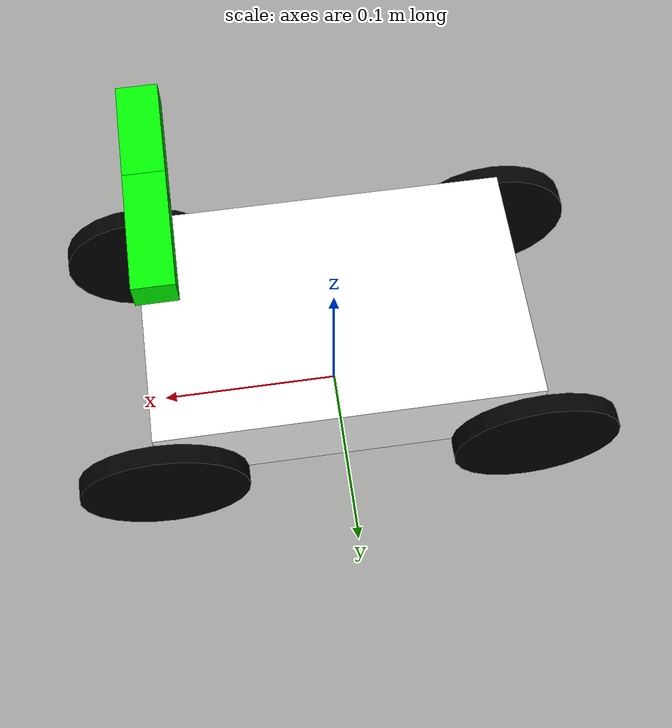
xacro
<?xml version="1.0"?>
<robot xmlns:xacro="http://www.ros.org/wiki/xacro" name="robot">

    <xacro:include filename="gazebo.xacro"/>
    <xacro:include filename="imu.xacro"/>
    <xacro:include filename="transmission.xacro"/>
    <xacro:include filename="left_camera.xacro"/>
    <xacro:include filename="right_camera.xacro"/>

    <!-- Vehicle Geometries -->
    <xacro:property name="base_x_size" value="0.2" />
    <xacro:property name="base_y_size" value="0.13" />
    <xacro:property name="base_z_size" value="0.1" />
    <xacro:property name="wheelbase" value="0.2"/>
    <xacro:property name="track" value="0.14"/>
    <xacro:property name="base_mass" value="3.0"/>
    <xacro:property name="wheel_length" value="0.01" />
    <xacro:property name="wheel_radius" value="0.045" />

    <!-- BASE LINK -->

    <link name="base_footprint">

    </link>

    <!-- base_link LINK -->

    <joint name="base_joint" type="fixed">
        <parent link="base_footprint"/>
        <child link="base_link"/>
        <origin xyz="0 0 0.045"/>
    </joint>

    <link name="base_link">
        <xacro:inertial_box mass="3" x="${base_x_size}" y="${base_y_size}" z="${base_z_size}">
            <origin xyz="0 0 0.025" rpy="0 0 0"/>
        </xacro:inertial_box>
        <visual>
            <origin xyz="0 0 0.025" rpy="0 0 0" />
            <geometry>
                <box size="0.2 0.13 0.05"/>
            </geometry>
            <material name="White">
                <color rgba="1 1 1 1"/>
            </material>
        </visual>
        <collision>
            <origin xyz="0 0 0.025" rpy="0 0 0" />
            <geometry>
                <box size="${base_x_size} ${base_y_size} ${base_z_size}"/>
            </geometry>
        </collision>
    </link>

    <!-- WHEEL LINK -->

    <link name="rear_right_wheel_link">
        <xacro:inertial_cylinder mass="0.1" length="${wheel_length}" radius="${wheel_radius}">
            <origin xyz="0 0 0" rpy="0 0 0"/>
        </xacro:inertial_cylinder>
        <visual>
            <origin xyz="0 0 0" rpy="0 0 0" />
            <geometry>
                <cylinder radius="${wheel_radius}" length="${wheel_length}1"/>
            </geometry>
            <material name="Black">
                <color rgba="0 0 0 1"/>
            </material>
        </visual>
        <collision>
            <origin xyz="0 0 0" rpy="0 0 0" />
            <geometry>
                <cylinder radius="${wheel_radius}" length="${wheel_length}"/>
            </geometry>
        </collision>
    </link>

    <link name="rear_left_wheel_link">
        <xacro:inertial_cylinder mass="0.1" length="${wheel_length}" radius="${wheel_radius}">
            <origin xyz="0 0 0" rpy="0 0 0"/>
        </xacro:inertial_cylinder>
        <visual>
            <origin xyz="0 0 0" rpy="0 0 0" />
            <geometry>
                <cylinder radius="${wheel_radius}" length="${wheel_length}"/>
            </geometry>
            <material name="Black">
                <color rgba="0 0 0 1"/>
            </material>
        </visual>
        <collision>
            <origin xyz="0 0 0" rpy="0 0 0" />
            <geometry>
                <cylinder radius="${wheel_radius}" length="${wheel_length}"/>
            </geometry>
        </collision>
    </link>

    <link name="front_right_wheel_link">
        <xacro:inertial_cylinder mass="0.1" length="${wheel_length}" radius="${wheel_radius}">
            <origin xyz="0 0 0" rpy="0 0 0"/>
        </xacro:inertial_cylinder>
        <visual>
            <origin xyz="0 0 0" rpy="0 0 0" />
            <geometry>
                <cylinder radius="${wheel_radius}" length="${wheel_length}"/>
            </geometry>
            <material name="Black">
                <color rgba="0 0 0 1"/>
            </material>
        </visual>
        <collision>
            <origin xyz="0 0 0" rpy="0 0 0" />
            <geometry>
                <cylinder radius="${wheel_radius}" length="${wheel_length}"/>
            </geometry>
        </collision>
    </link>

    <link name="front_left_wheel_link">
        <xacro:inertial_cylinder mass="0.1" length="${wheel_length}" radius="${wheel_radius}">
            <origin xyz="0 0 0" rpy="0 0 0"/>
        </xacro:inertial_cylinder>
        <visual>
            <origin xyz="0 0 0" rpy="0 0 0" />
            <geometry>
                <cylinder radius="${wheel_radius}" length="${wheel_length}"/>
            </geometry>
            <material name="Black">
                <color rgba="0 0 0 1"/>
            </material>
        </visual>
        <collision>
            <origin xyz="0 0 0" rpy="0 0 0" />
            <geometry>
                <cylinder radius="${wheel_radius}" length="${wheel_length}"/>
            </geometry>
        </collision>
    </link>

    <link name="right_steering_hinge">
        <xacro:inertial_flip_cylinder mass="0.1" length="${wheel_length}" radius="${wheel_radius}">
            <origin xyz="0 0 0" rpy="0 0 0"/>
        </xacro:inertial_flip_cylinder>
    </link>
    <link name="left_steering_hinge">
        <xacro:inertial_flip_cylinder mass="0.1" length="${wheel_length}" radius="${wheel_radius}">
            <origin xyz="0 0 0" rpy="0 0 0"/>
        </xacro:inertial_flip_cylinder>
    </link>

    <!-- WHEEL JOINT -->

    <joint name="rear_left_wheel" type="continuous">
        <origin xyz="${-wheelbase/2} ${track/2} 0" rpy="-1.57079632679 0 0" />
        <parent link="base_link" />
        <child link="rear_left_wheel_link" />
        <axis xyz="0 0 1" />
        <limit
            effort="10.0"
            lower="-3.14159265359"
            upper="3.14159265359"
            velocity="20.0"
            />
    </joint>

    <joint name="rear_right_wheel" type="continuous">
        <origin xyz="${-wheelbase/2} ${-track/2} 0" rpy="-1.57079632679 0 0" />
        <parent link="base_link" />
        <child link="rear_right_wheel_link" />
        <axis xyz="0 0 1" />
        <limit
            effort="10.0"
            lower="-3.14159265359"
            upper="3.14159265359"
            velocity="20.0"
            />
    </joint>

    <joint name="left_steering_hinge_wheel" type="revolute">
        <origin xyz="${wheelbase/2} ${track/2} 0" rpy="0 0 0" />
        <parent link="base_link" />
        <child link="left_steering_hinge" />
        <axis xyz="0 0 1" />
        <limit
            effort="10.00"
            lower="-0.60"
            upper="0.60"
            velocity="10.00"/>
    </joint>

    <joint name="front_left_wheel" type="continuous">
        <origin xyz="0 0 0" rpy="-1.57079632679 0 0" />
        <parent link="left_steering_hinge" />
        <child link="front_left_wheel_link" />
        <axis xyz="0 0 1" />
        <limit
            effort="10.0"
            lower="-3.14159265359"
            upper="3.14159265359"
            velocity="20.0"
            />
    </joint>

    <joint name="right_steering_hinge_wheel" type="revolute">
        <origin xyz="${wheelbase/2} ${-track/2} 0" rpy="0 0 0" />
        <parent link="base_link" />
        <child link="right_steering_hinge" />
        <axis xyz="0 0 1" />
        <limit
            effort="10.00"
            lower="-0.60"
            upper="0.60"
            velocity="10.00"/>
    </joint>

    <joint name="front_right_wheel" type="continuous">
        <origin xyz="0 0 0" rpy="-1.57079632679 0 0" />
        <parent link="right_steering_hinge" />
        <child link="front_right_wheel_link" />
        <axis xyz="0 0 1" />
        <limit
            effort="10.0"
            lower="-3.14159265359"
            upper="3.14159265359"
            velocity="20.0"
            />
    </joint>

    <!-- TRANSMISSIONS -->
    <xacro:wheel_transmission wheel_prefix="left_front"/>
    <xacro:wheel_transmission wheel_prefix="right_front"/>
    <xacro:wheel_transmission wheel_prefix="left_rear"/>
    <xacro:wheel_transmission wheel_prefix="right_rear"/>
    <xacro:steering_hinge_transmission wheel_prefix="left"/>
    <xacro:steering_hinge_transmission wheel_prefix="right"/>

</robot>

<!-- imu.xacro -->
<robot xmlns:xacro="http://www.ros.org/wiki/xacro" >

    <joint name="imu_joint" type="fixed">
        <parent link="base_link"/>
        <child link="imu_link"/>
        <origin xyz="0 0 0" rpy="0 0 0"/>
    </joint>

    <link name="imu_link">
        <visual>
            <geometry>
                <cylinder radius="0.02" length="0.01"/>
            </geometry>
            <material name="Yellow">
                <color rgba="1 1 0 1"/>
            </material>
        </visual>
        <collision>
            <geometry>
                <cylinder radius="0.02" length="0.01"/>
            </geometry>
        </collision>
        <xacro:inertial_cylinder mass="0.1" length="0.01" radius="0.02">
            <origin xyz="0 0 0" rpy="0 0 0"/>
        </xacro:inertial_cylinder>
    </link>

    <gazebo reference="imu_link">
        <gravity>true</gravity>
        <material>Gazebo/Yellow</material>
        <sensor name="imu_sensor" type="imu">
            <always_on>true</always_on>
            <update_rate>100</update_rate>
            <visualize>true</visualize>
            <topic>__default_topic__</topic>
            <plugin filename="libgazebo_ros_imu_sensor.so" name="imu_plugin">
                <ros >
                    <remapping>/imu_plugin/out:=imu</remapping>
                </ros>
                <topicName>imu</topicName>
                <bodyName>imu_link</bodyName>
                <updateRateHZ>100.0</updateRateHZ>
                <gaussianNoise>0.005</gaussianNoise>
                <xyzOffset>0 0 0</xyzOffset>
                <rpyOffset>0 0 0</rpyOffset>
                <frame_name>imu_link</frame_name>
                <initialOrientationAsReference>false</initialOrientationAsReference>
            </plugin>
            <pose>0 0 0 0 0 0</pose>
        </sensor>
    </gazebo>
</robot>

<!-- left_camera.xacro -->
<robot xmlns:xacro="http://www.ros.org/wiki/xacro" >
    <link name='left_camera_link'>
        <pose>0 0 0 0 0 0</pose>
        <inertial>
            <mass value="0.1"/>
            <origin xyz="0.0 0 0" rpy="0 0 0"/>
            <inertia
                ixx="1e-6" ixy="0" ixz="0"
                iyy="1e-6" iyz="0"
                izz="1e-6"
            />
        </inertial>
        <visual name='left_camera_visual'>
            <origin xyz="0 0 0" rpy="0 0 0"/>
            <geometry>
                <box size="0.02 0.06 0.015"/>
            </geometry>
            <material name='left_camera_material'>
                <color rgba="0 1 0 1"/> <!-- Green -->
                <ambient>0.1 0.1 0.1 1</ambient>
                <diffuse>0.1 0.1 0.2 1</diffuse>
                <specular>0 0 0 0</specular>
                <emissive>0 0 0 1</emissive>
            </material>
        </visual>
        <collision name='left_camera_collision'>
            <origin xyz="0 0 0" rpy="0 0 0"/>
            <geometry>
                <box size="0.02 0.06 0.015"/>
            </geometry>
        </collision>
    </link>

    <joint type="fixed" name="left_camera_joint">
        <origin xyz="0.084 0 ${0.03+0.105}" rpy="0 0 0"/>
        <child link="left_camera_link"/>
        <parent link="base_link"/>
    </joint>
    <link name="left_link"></link>

    <joint name="left_camera_to_camera_joint" type="fixed">
        <origin xyz="0 0 0" rpy="${-pi/2} 0 ${-pi/2} "/>
        <parent link="left_camera_link"/>
        <child link="left_link"/>
        </joint>

    <gazebo reference="left_camera_link">
        <material>Gazebo/Green</material>

        <sensor name="camera" type="camera">
            <pose> 0 0 0 0 0 0 </pose>
            <visualize>true</visualize>
            <update_rate>100</update_rate>
            <camera>
                <horizontal_fov>1.089</horizontal_fov>
                <image>
                    <format>L8</format>
                    <width>1384</width>
                    <height>1032</height>
                </image>
                <clip>
                    <near>0.02</near>
                    <far>300</far>
                </clip>
            </camera>
            <plugin name="left_camera_controller" filename="libgazebo_ros_camera.so">
                <ros>
                    <namespace>camera</namespace>
                    <remapping>left_camera_link/image_raw:=left_image</remapping>
                    <remapping>left_camera_link/camera_info:=left_info</remapping>
                </ros>
                <camera_name>left_camera_link</camera_name>
                <frame_name>left_link</frame_name>
            </plugin>
        </sensor>
    </gazebo>

</robot>

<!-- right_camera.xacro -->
<robot xmlns:xacro="http://www.ros.org/wiki/xacro" >
    <link name='right_camera_link'>
        <pose>0 0 0 0 0 0</pose>
        <inertial>
            <mass value="0.1"/>
            <origin xyz="0.0 0 0" rpy="0 0 0"/>
            <inertia
                ixx="1e-6" ixy="0" ixz="0"
                iyy="1e-6" iyz="0"
                izz="1e-6"
            />
        </inertial>
        <visual name='right_camera_visual'>
            <origin xyz="0 0 0" rpy="0 0 0"/>
            <geometry>
                <box size="0.02 0.06 0.015"/>
            </geometry>
            <material name='right_camera_material'>
                <color rgba="0 1 0 1"/> <!-- Green -->
                <ambient>0.1 0.1 0.1 1</ambient>
                <diffuse>0.1 0.1 0.2 1</diffuse>
                <specular>0 0 0 0</specular>
                <emissive>0 0 0 1</emissive>
            </material>
        </visual>
        <collision name='right_camera_collision'>
            <origin xyz="0 0 0" rpy="0 0 0"/>
            <geometry>
                <box size="0.02 0.06 0.015"/>
            </geometry>
        </collision>
    </link>

    <joint type="fixed" name="right_camera_joint">
        <origin xyz="0.084 -0.05 ${0.03+0.105}" rpy="0 0 0"/>
        <child link="right_camera_link"/>
        <parent link="base_link"/>
    </joint>
    <link name="right_link"></link>

    <joint name="right_camera_to_camera_joint" type="fixed">
        <origin xyz="0 0 0" rpy="${-pi/2} 0 ${-pi/2} "/>
        <parent link="right_camera_link"/>
        <child link="right_link"/>
        </joint>

    <gazebo reference="right_camera_link">
        <material>Gazebo/Green</material>

        <sensor name="camera" type="camera">
            <pose> 0 0 0 0 0 0 </pose>
            <visualize>true</visualize>
            <update_rate>100</update_rate>
            <camera>
                <horizontal_fov>1.089</horizontal_fov>
                <image>
                    <format>L8</format>
                    <width>1384</width>
                    <height>1032</height>
                </image>
                <clip>
                    <near>0.02</near>
                    <far>300</far>
                </clip>
            </camera>
            <plugin name="right_camera_controller" filename="libgazebo_ros_camera.so">
                <ros>
                    <namespace>camera</namespace>
                    <remapping>right_camera_link/image_raw:=right_image</remapping>
                    <remapping>right_camera_link/camera_info:=right_info</remapping>
                </ros>
                <camera_name>right_camera_link</camera_name>
                <frame_name>right_link</frame_name>
            </plugin>
        </sensor>
    </gazebo>

</robot>
